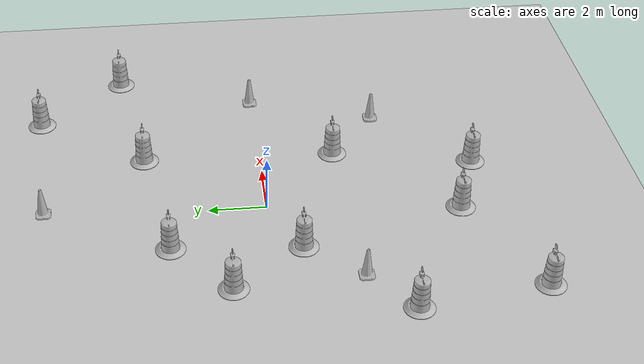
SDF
<sdf version="1.7">
 <world name="default">
  <light name="sun" type="directional">
   <pose>0 0 10 0 -0 0</pose>
   <diffuse>0.8 0.8 0.8 1</diffuse>
   <specular>0.2 0.2 0.2 1</specular>
   <attenuation>
    <range>1000</range>
    <constant>0.9</constant>
    <linear>0.01</linear>
    <quadratic>0.001</quadratic>
   </attenuation>
   <direction>-0.5 0.1 -0.9</direction>
   <spot><inner_angle>0</inner_angle><outer_angle>0</outer_angle><falloff>0</falloff></spot>
  </light>
  <model name="ground_plane">
   <static>1</static>
   <link name="link">
    <collision name="collision">
     <geometry><plane><normal>0 0 1</normal><size>100 100</size></plane></geometry>
     <surface>
      <contact><collide_bitmask>65535</collide_bitmask></contact>
      <friction><ode><mu>100</mu><mu2>50</mu2></ode></friction>
     </surface>
    </collision>
    <visual name="visual">
     <cast_shadows>0</cast_shadows>
     <geometry><plane><normal>0 0 1</normal><size>100 100</size></plane></geometry>
     <material>
      <script><uri>file://media/materials/scripts/gazebo.material</uri><name>Gazebo/Grey</name></script>
     </material>
    </visual>
   </link>
  </model>
  <gravity>0 0 -9.8</gravity>
  <magnetic_field>6e-06 2.3e-05 -4.2e-05</magnetic_field>
  <atmosphere type="adiabatic"/>
  <physics type="ode">
   <max_step_size>0.001</max_step_size>
   <real_time_factor>1</real_time_factor>
   <real_time_update_rate>1000</real_time_update_rate>
  </physics>
  <scene><ambient>0.4 0.4 0.4 1</ambient><background>0.7 0.7 0.7 1</background><shadows>1</shadows></scene>
  <audio><device>default</device></audio>
  <spherical_coordinates>
   <surface_model>EARTH_WGS84</surface_model>
   <latitude_deg>0</latitude_deg>
   <longitude_deg>0</longitude_deg>
   <elevation>0</elevation>
   <heading_deg>0</heading_deg>
  </spherical_coordinates>
  <model name="Construction Barrel">
   <link name="link">
    <inertial>
     <pose>0 0 0.4 0 -0 0</pose>
     <mass>500</mass>
     <inertia><ixx>51.2096</ixx><iyy>51.2096</iyy><izz>25</izz><ixy>0</ixy><ixz>0</ixz><iyz>0</iyz></inertia>
    </inertial>
    <collision name="collision">
     <geometry><mesh><uri>model://construction_barrel/meshes/construction_barrel.dae</uri></mesh></geometry>
    </collision>
    <visual name="visual">
     <geometry><mesh><uri>model://construction_barrel/meshes/construction_barrel.dae</uri></mesh></geometry>
    </visual>
   </link>
   <pose>-3.89435 1.41321 1e-06 3e-06 2e-06 -2.3e-05</pose>
  </model>
  <model name="Construction Barrel_0">
   <link name="link">
    <inertial>
     <pose>0 0 0.4 0 -0 0</pose>
     <mass>500</mass>
     <inertia><ixx>51.2096</ixx><iyy>51.2096</iyy><izz>25</izz><ixy>0</ixy><ixz>0</ixz><iyz>0</iyz></inertia>
    </inertial>
    <collision name="collision">
     <geometry><mesh><uri>model://construction_barrel/meshes/construction_barrel.dae</uri></mesh></geometry>
    </collision>
    <visual name="visual">
     <geometry><mesh><uri>model://construction_barrel/meshes/construction_barrel.dae</uri></mesh></geometry>
    </visual>
   </link>
   <pose>-1.82552 3.33636 1e-06 3e-06 2e-06 -2.1e-05</pose>
  </model>
  <model name="Construction Barrel_2">
   <link name="link">
    <inertial>
     <pose>0 0 0.4 0 -0 0</pose>
     <mass>500</mass>
     <inertia><ixx>51.2096</ixx><iyy>51.2096</iyy><izz>25</izz><ixy>0</ixy><ixz>0</ixz><iyz>0</iyz></inertia>
    </inertial>
    <collision name="collision">
     <geometry><mesh><uri>model://construction_barrel/meshes/construction_barrel.dae</uri></mesh></geometry>
    </collision>
    <visual name="visual">
     <geometry><mesh><uri>model://construction_barrel/meshes/construction_barrel.dae</uri></mesh></geometry>
    </visual>
   </link>
   <pose>2.79211 -2.62754 -1e-06 3e-06 7e-06 -1.5e-05</pose>
  </model>
  <model name="Construction Barrel_3">
   <link name="link">
    <inertial>
     <pose>0 0 0.4 0 -0 0</pose>
     <mass>500</mass>
     <inertia><ixx>51.2096</ixx><iyy>51.2096</iyy><izz>25</izz><ixy>0</ixy><ixz>0</ixz><iyz>0</iyz></inertia>
    </inertial>
    <collision name="collision">
     <geometry><mesh><uri>model://construction_barrel/meshes/construction_barrel.dae</uri></mesh></geometry>
    </collision>
    <visual name="visual">
     <geometry><mesh><uri>model://construction_barrel/meshes/construction_barrel.dae</uri></mesh></geometry>
    </visual>
   </link>
   <pose>-2.13248 -1.01636 0 0 0 -1.5e-05</pose>
  </model>
  <model name="Construction Barrel_5">
   <link name="link">
    <inertial>
     <pose>0 0 0.4 0 -0 0</pose>
     <mass>500</mass>
     <inertia><ixx>51.2096</ixx><iyy>51.2096</iyy><izz>25</izz><ixy>0</ixy><ixz>0</ixz><iyz>0</iyz></inertia>
    </inertial>
    <collision name="collision">
     <geometry><mesh><uri>model://construction_barrel/meshes/construction_barrel.dae</uri></mesh></geometry>
    </collision>
    <visual name="visual">
     <geometry><mesh><uri>model://construction_barrel/meshes/construction_barrel.dae</uri></mesh></geometry>
    </visual>
   </link>
   <pose>-0.627882 -6.59412 -2e-06 -0 7e-06 -8e-06</pose>
  </model>
  <model name="Construction Barrel_6">
   <link name="link">
    <inertial>
     <pose>0 0 0.4 0 -0 0</pose>
     <mass>500</mass>
     <inertia><ixx>51.2096</ixx><iyy>51.2096</iyy><izz>25</izz><ixy>0</ixy><ixz>0</ixz><iyz>0</iyz></inertia>
    </inertial>
    <collision name="collision">
     <geometry><mesh><uri>model://construction_barrel/meshes/construction_barrel.dae</uri></mesh></geometry>
    </collision>
    <visual name="visual">
     <geometry><mesh><uri>model://construction_barrel/meshes/construction_barrel.dae</uri></mesh></geometry>
    </visual>
   </link>
   <pose>1.86042 -7.51287 -1e-06 3e-06 1e-05 -7e-06</pose>
  </model>
  <model name="Construction Cone_4">
   <link name="link">
    <collision name="collision">
     <geometry>
      <mesh><scale>10 10 10</scale><uri>model://construction_cone/meshes/construction_cone.dae</uri></mesh>
     </geometry>
    </collision>
    <visual name="visual">
     <geometry>
      <mesh><scale>10 10 10</scale><uri>model://construction_cone/meshes/construction_cone.dae</uri></mesh>
     </geometry>
    </visual>
    <inertial>
     <inertia><ixx>1</ixx><ixy>0</ixy><ixz>0</ixz><iyy>1</iyy><iyz>0</iyz><izz>1</izz></inertia>
     <mass>1</mass>
    </inertial>
   </link>
   <pose>4.85274 -4.34905 -0 0 -0 0</pose>
  </model>
  <model name="Construction Barrel_1">
   <link name="link">
    <inertial>
     <pose>0 0 0.4 0 -0 0</pose>
     <mass>500</mass>
     <inertia><ixx>51.2096</ixx><iyy>51.2096</iyy><izz>25</izz><ixy>0</ixy><ixz>0</ixz><iyz>0</iyz></inertia>
    </inertial>
    <collision name="collision">
     <geometry><mesh><uri>model://construction_barrel/meshes/construction_barrel.dae</uri></mesh></geometry>
    </collision>
    <visual name="visual">
     <geometry><mesh><uri>model://construction_barrel/meshes/construction_barrel.dae</uri></mesh></geometry>
    </visual>
   </link>
   <pose>-5.28364 -4.23521 0 0 -0 0</pose>
  </model>
  <model name="Construction Cone">
   <link name="link">
    <collision name="collision">
     <geometry>
      <mesh><scale>10 10 10</scale><uri>model://construction_cone/meshes/construction_cone.dae</uri></mesh>
     </geometry>
    </collision>
    <visual name="visual">
     <geometry>
      <mesh><scale>10 10 10</scale><uri>model://construction_cone/meshes/construction_cone.dae</uri></mesh>
     </geometry>
    </visual>
    <inertial>
     <inertia><ixx>1</ixx><ixy>0</ixy><ixz>0</ixz><iyy>1</iyy><iyz>0</iyz><izz>1</izz></inertia>
     <mass>1</mass>
    </inertial>
   </link>
   <pose>-3.67171 -2.85071 0 0 -0 0</pose>
  </model>
  <model name="Construction Barrel_4">
   <link name="link">
    <inertial>
     <pose>0 0 0.4 0 -0 0</pose>
     <mass>500</mass>
     <inertia><ixx>51.2096</ixx><iyy>51.2096</iyy><izz>25</izz><ixy>0</ixy><ixz>0</ixz><iyz>0</iyz></inertia>
    </inertial>
    <collision name="collision">
     <geometry><mesh><uri>model://construction_barrel/meshes/construction_barrel.dae</uri></mesh></geometry>
    </collision>
    <visual name="visual">
     <geometry><mesh><uri>model://construction_barrel/meshes/construction_barrel.dae</uri></mesh></geometry>
    </visual>
   </link>
   <pose>-4.67333 -8.56327 0 0 -0 0</pose>
  </model>
  <model name="Construction Cone_1">
   <link name="link">
    <collision name="collision">
     <geometry>
      <mesh><scale>10 10 10</scale><uri>model://construction_cone/meshes/construction_cone.dae</uri></mesh>
     </geometry>
    </collision>
    <visual name="visual">
     <geometry>
      <mesh><scale>10 10 10</scale><uri>model://construction_cone/meshes/construction_cone.dae</uri></mesh>
     </geometry>
    </visual>
    <inertial>
     <inertia><ixx>1</ixx><ixy>0</ixy><ixz>0</ixz><iyy>1</iyy><iyz>0</iyz><izz>1</izz></inertia>
     <mass>1</mass>
    </inertial>
   </link>
   <pose>6.26408 0.09331 0 0 -0 0</pose>
  </model>
  <model name="Construction Barrel_7">
   <link name="link">
    <inertial>
     <pose>0 0 0.4 0 -0 0</pose>
     <mass>500</mass>
     <inertia><ixx>51.2096</ixx><iyy>51.2096</iyy><izz>25</izz><ixy>0</ixy><ixz>0</ixz><iyz>0</iyz></inertia>
    </inertial>
    <collision name="collision">
     <geometry><mesh><uri>model://construction_barrel/meshes/construction_barrel.dae</uri></mesh></geometry>
    </collision>
    <visual name="visual">
     <geometry><mesh><uri>model://construction_barrel/meshes/construction_barrel.dae</uri></mesh></geometry>
    </visual>
   </link>
   <pose>7.99304 5.00028 0 0 -0 0</pose>
  </model>
  <model name="Construction Barrel_8">
   <link name="link">
    <inertial>
     <pose>0 0 0.4 0 -0 0</pose>
     <mass>500</mass>
     <inertia><ixx>51.2096</ixx><iyy>51.2096</iyy><izz>25</izz><ixy>0</ixy><ixz>0</ixz><iyz>0</iyz></inertia>
    </inertial>
    <collision name="collision">
     <geometry><mesh><uri>model://construction_barrel/meshes/construction_barrel.dae</uri></mesh></geometry>
    </collision>
    <visual name="visual">
     <geometry><mesh><uri>model://construction_barrel/meshes/construction_barrel.dae</uri></mesh></geometry>
    </visual>
   </link>
   <pose>2.99793 4.13926 0 0 -0 0</pose>
  </model>
  <model name="Construction Barrel_9">
   <link name="link">
    <inertial>
     <pose>0 0 0.4 0 -0 0</pose>
     <mass>500</mass>
     <inertia><ixx>51.2096</ixx><iyy>51.2096</iyy><izz>25</izz><ixy>0</ixy><ixz>0</ixz><iyz>0</iyz></inertia>
    </inertial>
    <collision name="collision">
     <geometry><mesh><uri>model://construction_barrel/meshes/construction_barrel.dae</uri></mesh></geometry>
    </collision>
    <visual name="visual">
     <geometry><mesh><uri>model://construction_barrel/meshes/construction_barrel.dae</uri></mesh></geometry>
    </visual>
   </link>
   <pose>5.55211 7.92318 0 0 -0 0</pose>
  </model>
  <model name="Construction Cone_0">
   <link name="link">
    <collision name="collision">
     <geometry>
      <mesh><scale>10 10 10</scale><uri>model://construction_cone/meshes/construction_cone.dae</uri></mesh>
     </geometry>
    </collision>
    <visual name="visual">
     <geometry>
      <mesh><scale>10 10 10</scale><uri>model://construction_cone/meshes/construction_cone.dae</uri></mesh>
     </geometry>
    </visual>
    <inertial>
     <inertia><ixx>1</ixx><ixy>0</ixy><ixz>0</ixz><iyy>1</iyy><iyz>0</iyz><izz>1</izz></inertia>
     <mass>1</mass>
    </inertial>
   </link>
   <pose>0.347532 7.57954 0 0 -0 0</pose>
  </model>
 </world>
</sdf>
